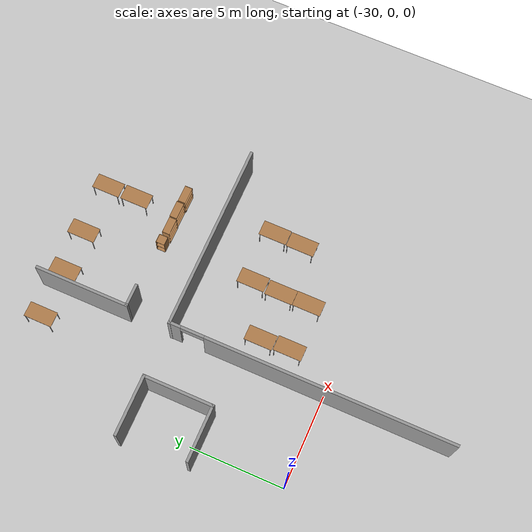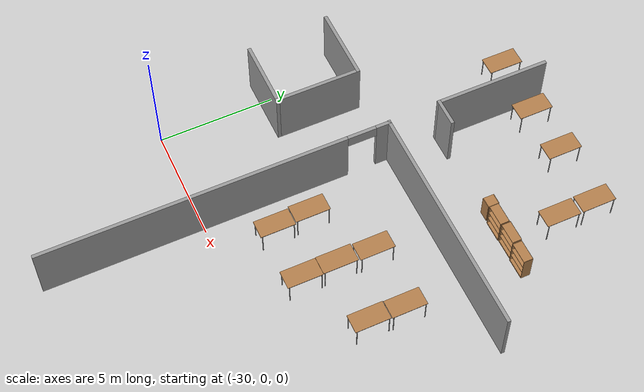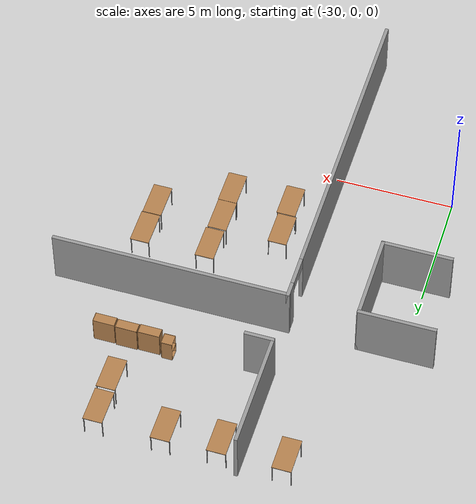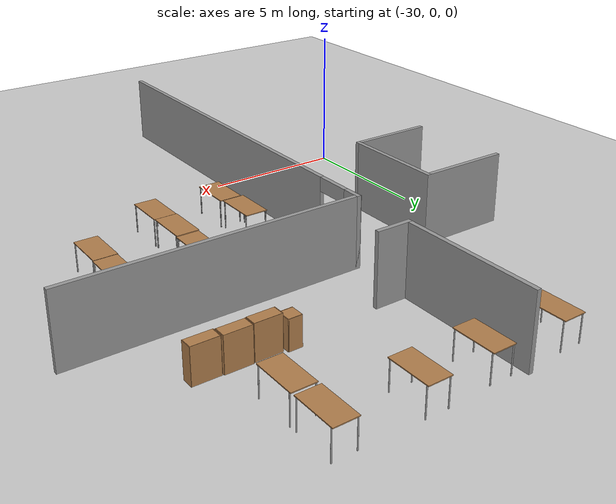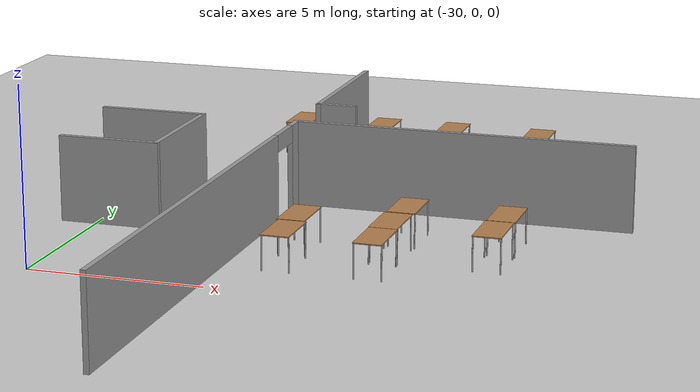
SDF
<sdf version="1.4">
 <world name="default">
  <model name="ground_plane">
   <static>1</static>
   <link name="link">
    <collision name="collision">
     <geometry><plane><normal>0 0 1</normal><size>100 100</size></plane></geometry>
    </collision>
    <visual name="visual">
     <cast_shadows>0</cast_shadows>
     <geometry><plane><normal>0 0 1</normal><size>100 100</size></plane></geometry>
     <material>
      <script><uri>file://media/materials/scripts/gazebo.material</uri><name>Gazebo/Grey</name></script>
     </material>
    </visual>
    <velocity_decay><linear>0</linear><angular>0</angular></velocity_decay>
   </link>
  </model>
  <model name="Shannon">
   <pose>-0.0406 0.68299 0 0 -0 0</pose>
   <link name="Wall_108">
    <collision name="Wall_108_Collision">
     <geometry><box><size>3.75 0.15 2.5</size></box></geometry>
     <pose>0 0 1.25 0 -0 0</pose>
    </collision>
    <visual name="Wall_108_Visual">
     <pose>0 0 1.25 0 -0 0</pose>
     <geometry><box><size>3.75 0.15 2.5</size></box></geometry>
     <material>
      <script><uri>file://media/materials/scripts/gazebo.material</uri><name>Gazebo/Grey</name></script>
      <ambient>1 1 1 1</ambient>
     </material>
    </visual>
    <pose>-28.0998 5.68065 0 0 -0 -1.5708</pose>
    <velocity_decay><linear>0</linear><angular>0</angular></velocity_decay>
   </link>
   <link name="Wall_109">
    <collision name="Wall_109_Collision">
     <geometry><box><size>3 0.15 2.5</size></box></geometry>
     <pose>0 0 1.25 0 -0 0</pose>
    </collision>
    <visual name="Wall_109_Visual">
     <pose>0 0 1.25 0 -0 0</pose>
     <geometry><box><size>3 0.15 2.5</size></box></geometry>
     <material>
      <script><uri>file://media/materials/scripts/gazebo.material</uri><name>Gazebo/Grey</name></script>
      <ambient>1 1 1 1</ambient>
     </material>
    </visual>
    <pose>-29.5248 3.88065 0 0 -0 3.14159</pose>
    <velocity_decay><linear>0</linear><angular>0</angular></velocity_decay>
   </link>
   <link name="Wall_16">
    <collision name="Wall_16_Collision">
     <geometry><box><size>10 0.15 2.5</size></box></geometry>
     <pose>0 0 1.25 0 -0 0</pose>
    </collision>
    <visual name="Wall_16_Visual">
     <pose>0 0 1.25 0 -0 0</pose>
     <geometry><box><size>10 0.15 2.5</size></box></geometry>
     <material>
      <script><uri>file://media/materials/scripts/gazebo.material</uri><name>Gazebo/Grey</name></script>
      <ambient>1 1 1 1</ambient>
     </material>
    </visual>
    <pose>-20.2786 7.49586 0 0 -0 0</pose>
    <velocity_decay><linear>0</linear><angular>0</angular></velocity_decay>
   </link>
   <link name="Wall_20">
    <pose>-25.1903 0.07086 0 0 -0 1.5708</pose>
    <visual name="Wall_20_Visual_0">
     <pose>-0.95824 0 1.25 0 -0 0</pose>
     <geometry><box><size>13.0835 0.15 2.5</size></box></geometry>
     <material>
      <script><uri>file://media/materials/scripts/gazebo.material</uri><name>Gazebo/Grey</name></script>
      <ambient>1 1 1 1</ambient>
     </material>
    </visual>
    <collision name="Wall_20_Collision_0">
     <geometry><box><size>13.0835 0.15 2.5</size></box></geometry>
     <pose>-0.95824 0 1.25 0 -0 0</pose>
    </collision>
    <visual name="Wall_20_Visual_1">
     <pose>7.16524 0 1.25 0 -0 0</pose>
     <geometry><box><size>0.669521 0.15 2.5</size></box></geometry>
     <material>
      <script><uri>file://media/materials/scripts/gazebo.material</uri><name>Gazebo/Grey</name></script>
      <ambient>1 1 1 1</ambient>
     </material>
    </visual>
    <collision name="Wall_20_Collision_1">
     <geometry><box><size>0.669521 0.15 2.5</size></box></geometry>
     <pose>7.16524 0 1.25 0 -0 0</pose>
    </collision>
    <visual name="Wall_20_Visual_2">
     <pose>6.207 0 2.25 0 -0 0</pose>
     <geometry><box><size>1.24696 0.15 0.5</size></box></geometry>
     <material>
      <script><uri>file://media/materials/scripts/gazebo.material</uri><name>Gazebo/Grey</name></script>
      <ambient>1 1 1 1</ambient>
     </material>
    </visual>
    <collision name="Wall_20_Collision_2">
     <geometry><box><size>1.24696 0.15 0.5</size></box></geometry>
     <pose>6.207 0 2.25 0 -0 0</pose>
    </collision>
    <velocity_decay><linear>0</linear><angular>0</angular></velocity_decay>
   </link>
   <link name="Wall_73">
    <collision name="Wall_73_Collision">
     <geometry><box><size>3.25 0.15 2.5</size></box></geometry>
     <pose>0 0 1.25 0 -0 0</pose>
    </collision>
    <visual name="Wall_73_Visual">
     <pose>0 0 1.25 0 -0 0</pose>
     <geometry><box><size>3.25 0.15 2.5</size></box></geometry>
     <material>
      <script><uri>file://media/materials/scripts/gazebo.material</uri><name>Gazebo/Grey</name></script>
      <ambient>1 1 1 1</ambient>
     </material>
    </visual>
    <pose>-29.6498 7.48065 0 0 -0 0</pose>
    <velocity_decay><linear>0</linear><angular>0</angular></velocity_decay>
   </link>
   <link name="Wall_75">
    <collision name="Wall_75_Collision">
     <geometry><box><size>5 0.15 2.5</size></box></geometry>
     <pose>0 0 1.25 0 -0 0</pose>
    </collision>
    <visual name="Wall_75_Visual">
     <pose>0 0 1.25 0 -0 0</pose>
     <geometry><box><size>5 0.15 2.5</size></box></geometry>
     <material>
      <script><uri>file://media/materials/scripts/gazebo.material</uri><name>Gazebo/Grey</name></script>
      <ambient>1 1 1 1</ambient>
     </material>
    </visual>
    <pose>-25.2552 12.203 0 0 -0 -1.5708</pose>
    <velocity_decay><linear>0</linear><angular>0</angular></velocity_decay>
   </link>
   <link name="Wall_76">
    <collision name="Wall_76_Collision">
     <geometry><box><size>1.25 0.15 2.5</size></box></geometry>
     <pose>0 0 1.25 0 -0 0</pose>
    </collision>
    <visual name="Wall_76_Visual">
     <pose>0 0 1.25 0 -0 0</pose>
     <geometry><box><size>1.25 0.15 2.5</size></box></geometry>
     <material>
      <script><uri>file://media/materials/scripts/gazebo.material</uri><name>Gazebo/Grey</name></script>
      <ambient>1 1 1 1</ambient>
     </material>
    </visual>
    <pose>-24.7052 9.77801 0 0 -0 0</pose>
    <velocity_decay><linear>0</linear><angular>0</angular></velocity_decay>
   </link>
   <static>1</static>
  </model>
  <model name="cabinet">
   <static>1</static>
   <link name="cabinet_bottom_plate">
    <inertial>
     <pose>0 0 -1 0 -0 0</pose>
     <inertia><ixx>2.05</ixx><ixy>0</ixy><ixz>0</ixz><iyy>2.05</iyy><iyz>0</iyz><izz>2.05</izz></inertia>
     <mass>25</mass>
    </inertial>
    <collision name="cabinet_bottom_plate_geom">
     <pose>0 0 0.01 0 -0 0</pose>
     <geometry><box><size>0.45 0.45 0.02</size></box></geometry>
    </collision>
    <visual name="cabinet_bottom_plate_geom_visual">
     <pose>0 0 0.01 0 -0 0</pose>
     <geometry><box><size>0.45 0.45 0.02</size></box></geometry>
     <material>
      <script><uri>file://media/materials/scripts/gazebo.material</uri><name>Gazebo/Wood</name></script>
     </material>
    </visual>
    <collision name="cabinet_bottom_plate_geom_cabinet_back_plate">
     <pose>0.235 0 0.51 0 -0 0</pose>
     <geometry><box><size>0.02 0.45 1.02</size></box></geometry>
    </collision>
    <visual name="cabinet_bottom_plate_geom_cabinet_back_plate_visual">
     <pose>0.235 0 0.51 0 -0 0</pose>
     <geometry><box><size>0.02 0.45 1.02</size></box></geometry>
     <material>
      <script><uri>file://media/materials/scripts/gazebo.material</uri><name>Gazebo/Wood</name></script>
     </material>
    </visual>
    <collision name="cabinet_bottom_plate_geom_cabinet_left_plate">
     <pose>0 0.235 0.51 0 -0 0</pose>
     <geometry><box><size>0.45 0.02 1.02</size></box></geometry>
    </collision>
    <visual name="cabinet_bottom_plate_geom_cabinet_left_plate_visual">
     <pose>0 0.235 0.51 0 -0 0</pose>
     <geometry><box><size>0.45 0.02 1.02</size></box></geometry>
     <material>
      <script><uri>file://media/materials/scripts/gazebo.material</uri><name>Gazebo/Wood</name></script>
     </material>
    </visual>
    <collision name="cabinet_bottom_plate_geom_cabinet_middle_plate">
     <pose>0 0 0.51 0 -0 0</pose>
     <geometry><box><size>0.45 0.45 0.02</size></box></geometry>
    </collision>
    <visual name="cabinet_bottom_plate_geom_cabinet_middle_plate_visual">
     <pose>0 0 0.51 0 -0 0</pose>
     <geometry><box><size>0.45 0.45 0.02</size></box></geometry>
     <material>
      <script><uri>file://media/materials/scripts/gazebo.material</uri><name>Gazebo/Wood</name></script>
     </material>
    </visual>
    <collision name="cabinet_bottom_plate_geom_cabinet_right_plate">
     <pose>0 -0.235 0.51 0 -0 0</pose>
     <geometry><box><size>0.45 0.02 1.02</size></box></geometry>
    </collision>
    <visual name="cabinet_bottom_plate_geom_cabinet_right_plate_visual">
     <pose>0 -0.235 0.51 0 -0 0</pose>
     <geometry><box><size>0.45 0.02 1.02</size></box></geometry>
     <material>
      <script><uri>file://media/materials/scripts/gazebo.material</uri><name>Gazebo/Wood</name></script>
     </material>
    </visual>
    <collision name="cabinet_bottom_plate_geom_cabinet_top_plate">
     <pose>0 0 1.01 0 -0 0</pose>
     <geometry><box><size>0.45 0.45 0.02</size></box></geometry>
    </collision>
    <visual name="cabinet_bottom_plate_geom_cabinet_top_plate_visual">
     <pose>0 0 1.01 0 -0 0</pose>
     <geometry><box><size>0.45 0.45 0.02</size></box></geometry>
     <material>
      <script><uri>file://media/materials/scripts/gazebo.material</uri><name>Gazebo/Wood</name></script>
     </material>
    </visual>
    <velocity_decay><linear>0</linear><angular>0</angular></velocity_decay>
   </link>
   <pose>-21.0183 10.6635 0 0 -0 0</pose>
  </model>
  <model name="table_clone_clone_9">
   <static>1</static>
   <link name="link">
    <collision name="surface">
     <pose>0 0 1 0 -0 0</pose>
     <geometry><box><size>1.5 0.8 0.03</size></box></geometry>
    </collision>
    <visual name="visual1">
     <pose>0 0 1 0 -0 0</pose>
     <geometry><box><size>1.5 0.8 0.03</size></box></geometry>
     <material>
      <script><uri>file://media/materials/scripts/gazebo.material</uri><name>Gazebo/Wood</name></script>
     </material>
    </visual>
    <collision name="front_left_leg">
     <pose>0.68 0.38 0.5 0 -0 0</pose>
     <geometry><cylinder><radius>0.02</radius><length>1</length></cylinder></geometry>
    </collision>
    <visual name="front_left_leg">
     <pose>0.68 0.38 0.5 0 -0 0</pose>
     <geometry><cylinder><radius>0.02</radius><length>1</length></cylinder></geometry>
     <material>
      <script><uri>file://media/materials/scripts/gazebo.material</uri><name>Gazebo/Grey</name></script>
     </material>
    </visual>
    <collision name="front_right_leg">
     <pose>0.68 -0.38 0.5 0 -0 0</pose>
     <geometry><cylinder><radius>0.02</radius><length>1</length></cylinder></geometry>
    </collision>
    <visual name="front_right_leg">
     <pose>0.68 -0.38 0.5 0 -0 0</pose>
     <geometry><cylinder><radius>0.02</radius><length>1</length></cylinder></geometry>
     <material>
      <script><uri>file://media/materials/scripts/gazebo.material</uri><name>Gazebo/Grey</name></script>
     </material>
    </visual>
    <collision name="back_right_leg">
     <pose>-0.68 -0.38 0.5 0 -0 0</pose>
     <geometry><cylinder><radius>0.02</radius><length>1</length></cylinder></geometry>
    </collision>
    <visual name="back_right_leg">
     <pose>-0.68 -0.38 0.5 0 -0 0</pose>
     <geometry><cylinder><radius>0.02</radius><length>1</length></cylinder></geometry>
     <material>
      <script><uri>file://media/materials/scripts/gazebo.material</uri><name>Gazebo/Grey</name></script>
     </material>
    </visual>
    <collision name="back_left_leg">
     <pose>-0.68 0.38 0.5 0 -0 0</pose>
     <geometry><cylinder><radius>0.02</radius><length>1</length></cylinder></geometry>
    </collision>
    <visual name="back_left_leg">
     <pose>-0.68 0.38 0.5 0 -0 0</pose>
     <geometry><cylinder><radius>0.02</radius><length>1</length></cylinder></geometry>
     <material>
      <script><uri>file://media/materials/scripts/gazebo.material</uri><name>Gazebo/Grey</name></script>
     </material>
    </visual>
    <velocity_decay><linear>0</linear><angular>0</angular></velocity_decay>
   </link>
   <pose>-19.4067 14.4697 0 0 -0 1.57</pose>
  </model>
  <model name="table_clone_clone_10">
   <static>1</static>
   <link name="link">
    <collision name="surface">
     <pose>0 0 1 0 -0 0</pose>
     <geometry><box><size>1.5 0.8 0.03</size></box></geometry>
    </collision>
    <visual name="visual1">
     <pose>0 0 1 0 -0 0</pose>
     <geometry><box><size>1.5 0.8 0.03</size></box></geometry>
     <material>
      <script><uri>file://media/materials/scripts/gazebo.material</uri><name>Gazebo/Wood</name></script>
     </material>
    </visual>
    <collision name="front_left_leg">
     <pose>0.68 0.38 0.5 0 -0 0</pose>
     <geometry><cylinder><radius>0.02</radius><length>1</length></cylinder></geometry>
    </collision>
    <visual name="front_left_leg">
     <pose>0.68 0.38 0.5 0 -0 0</pose>
     <geometry><cylinder><radius>0.02</radius><length>1</length></cylinder></geometry>
     <material>
      <script><uri>file://media/materials/scripts/gazebo.material</uri><name>Gazebo/Grey</name></script>
     </material>
    </visual>
    <collision name="front_right_leg">
     <pose>0.68 -0.38 0.5 0 -0 0</pose>
     <geometry><cylinder><radius>0.02</radius><length>1</length></cylinder></geometry>
    </collision>
    <visual name="front_right_leg">
     <pose>0.68 -0.38 0.5 0 -0 0</pose>
     <geometry><cylinder><radius>0.02</radius><length>1</length></cylinder></geometry>
     <material>
      <script><uri>file://media/materials/scripts/gazebo.material</uri><name>Gazebo/Grey</name></script>
     </material>
    </visual>
    <collision name="back_right_leg">
     <pose>-0.68 -0.38 0.5 0 -0 0</pose>
     <geometry><cylinder><radius>0.02</radius><length>1</length></cylinder></geometry>
    </collision>
    <visual name="back_right_leg">
     <pose>-0.68 -0.38 0.5 0 -0 0</pose>
     <geometry><cylinder><radius>0.02</radius><length>1</length></cylinder></geometry>
     <material>
      <script><uri>file://media/materials/scripts/gazebo.material</uri><name>Gazebo/Grey</name></script>
     </material>
    </visual>
    <collision name="back_left_leg">
     <pose>-0.68 0.38 0.5 0 -0 0</pose>
     <geometry><cylinder><radius>0.02</radius><length>1</length></cylinder></geometry>
    </collision>
    <visual name="back_left_leg">
     <pose>-0.68 0.38 0.5 0 -0 0</pose>
     <geometry><cylinder><radius>0.02</radius><length>1</length></cylinder></geometry>
     <material>
      <script><uri>file://media/materials/scripts/gazebo.material</uri><name>Gazebo/Grey</name></script>
     </material>
    </visual>
    <velocity_decay><linear>0</linear><angular>0</angular></velocity_decay>
   </link>
   <pose>-19.3916 12.8642 0 0 -0 1.57</pose>
  </model>
  <model name="table_clone_clone_11">
   <static>1</static>
   <link name="link">
    <collision name="surface">
     <pose>0 0 1 0 -0 0</pose>
     <geometry><box><size>1.5 0.8 0.03</size></box></geometry>
    </collision>
    <visual name="visual1">
     <pose>0 0 1 0 -0 0</pose>
     <geometry><box><size>1.5 0.8 0.03</size></box></geometry>
     <material>
      <script><uri>file://media/materials/scripts/gazebo.material</uri><name>Gazebo/Wood</name></script>
     </material>
    </visual>
    <collision name="front_left_leg">
     <pose>0.68 0.38 0.5 0 -0 0</pose>
     <geometry><cylinder><radius>0.02</radius><length>1</length></cylinder></geometry>
    </collision>
    <visual name="front_left_leg">
     <pose>0.68 0.38 0.5 0 -0 0</pose>
     <geometry><cylinder><radius>0.02</radius><length>1</length></cylinder></geometry>
     <material>
      <script><uri>file://media/materials/scripts/gazebo.material</uri><name>Gazebo/Grey</name></script>
     </material>
    </visual>
    <collision name="front_right_leg">
     <pose>0.68 -0.38 0.5 0 -0 0</pose>
     <geometry><cylinder><radius>0.02</radius><length>1</length></cylinder></geometry>
    </collision>
    <visual name="front_right_leg">
     <pose>0.68 -0.38 0.5 0 -0 0</pose>
     <geometry><cylinder><radius>0.02</radius><length>1</length></cylinder></geometry>
     <material>
      <script><uri>file://media/materials/scripts/gazebo.material</uri><name>Gazebo/Grey</name></script>
     </material>
    </visual>
    <collision name="back_right_leg">
     <pose>-0.68 -0.38 0.5 0 -0 0</pose>
     <geometry><cylinder><radius>0.02</radius><length>1</length></cylinder></geometry>
    </collision>
    <visual name="back_right_leg">
     <pose>-0.68 -0.38 0.5 0 -0 0</pose>
     <geometry><cylinder><radius>0.02</radius><length>1</length></cylinder></geometry>
     <material>
      <script><uri>file://media/materials/scripts/gazebo.material</uri><name>Gazebo/Grey</name></script>
     </material>
    </visual>
    <collision name="back_left_leg">
     <pose>-0.68 0.38 0.5 0 -0 0</pose>
     <geometry><cylinder><radius>0.02</radius><length>1</length></cylinder></geometry>
    </collision>
    <visual name="back_left_leg">
     <pose>-0.68 0.38 0.5 0 -0 0</pose>
     <geometry><cylinder><radius>0.02</radius><length>1</length></cylinder></geometry>
     <material>
      <script><uri>file://media/materials/scripts/gazebo.material</uri><name>Gazebo/Grey</name></script>
     </material>
    </visual>
    <velocity_decay><linear>0</linear><angular>0</angular></velocity_decay>
   </link>
   <pose>-22.182 14.5341 0 0 -0 1.57</pose>
  </model>
  <model name="table_clone_clone_13">
   <static>1</static>
   <link name="link">
    <collision name="surface">
     <pose>0 0 1 0 -0 0</pose>
     <geometry><box><size>1.5 0.8 0.03</size></box></geometry>
    </collision>
    <visual name="visual1">
     <pose>0 0 1 0 -0 0</pose>
     <geometry><box><size>1.5 0.8 0.03</size></box></geometry>
     <material>
      <script><uri>file://media/materials/scripts/gazebo.material</uri><name>Gazebo/Wood</name></script>
     </material>
    </visual>
    <collision name="front_left_leg">
     <pose>0.68 0.38 0.5 0 -0 0</pose>
     <geometry><cylinder><radius>0.02</radius><length>1</length></cylinder></geometry>
    </collision>
    <visual name="front_left_leg">
     <pose>0.68 0.38 0.5 0 -0 0</pose>
     <geometry><cylinder><radius>0.02</radius><length>1</length></cylinder></geometry>
     <material>
      <script><uri>file://media/materials/scripts/gazebo.material</uri><name>Gazebo/Grey</name></script>
     </material>
    </visual>
    <collision name="front_right_leg">
     <pose>0.68 -0.38 0.5 0 -0 0</pose>
     <geometry><cylinder><radius>0.02</radius><length>1</length></cylinder></geometry>
    </collision>
    <visual name="front_right_leg">
     <pose>0.68 -0.38 0.5 0 -0 0</pose>
     <geometry><cylinder><radius>0.02</radius><length>1</length></cylinder></geometry>
     <material>
      <script><uri>file://media/materials/scripts/gazebo.material</uri><name>Gazebo/Grey</name></script>
     </material>
    </visual>
    <collision name="back_right_leg">
     <pose>-0.68 -0.38 0.5 0 -0 0</pose>
     <geometry><cylinder><radius>0.02</radius><length>1</length></cylinder></geometry>
    </collision>
    <visual name="back_right_leg">
     <pose>-0.68 -0.38 0.5 0 -0 0</pose>
     <geometry><cylinder><radius>0.02</radius><length>1</length></cylinder></geometry>
     <material>
      <script><uri>file://media/materials/scripts/gazebo.material</uri><name>Gazebo/Grey</name></script>
     </material>
    </visual>
    <collision name="back_left_leg">
     <pose>-0.68 0.38 0.5 0 -0 0</pose>
     <geometry><cylinder><radius>0.02</radius><length>1</length></cylinder></geometry>
    </collision>
    <visual name="back_left_leg">
     <pose>-0.68 0.38 0.5 0 -0 0</pose>
     <geometry><cylinder><radius>0.02</radius><length>1</length></cylinder></geometry>
     <material>
      <script><uri>file://media/materials/scripts/gazebo.material</uri><name>Gazebo/Grey</name></script>
     </material>
    </visual>
    <velocity_decay><linear>0</linear><angular>0</angular></velocity_decay>
   </link>
   <pose>-24.4446 14.4611 0 0 -0 1.57</pose>
  </model>
  <model name="table_clone_clone_15">
   <static>1</static>
   <link name="link">
    <collision name="surface">
     <pose>0 0 1 0 -0 0</pose>
     <geometry><box><size>1.5 0.8 0.03</size></box></geometry>
    </collision>
    <visual name="visual1">
     <pose>0 0 1 0 -0 0</pose>
     <geometry><box><size>1.5 0.8 0.03</size></box></geometry>
     <material>
      <script><uri>file://media/materials/scripts/gazebo.material</uri><name>Gazebo/Wood</name></script>
     </material>
    </visual>
    <collision name="front_left_leg">
     <pose>0.68 0.38 0.5 0 -0 0</pose>
     <geometry><cylinder><radius>0.02</radius><length>1</length></cylinder></geometry>
    </collision>
    <visual name="front_left_leg">
     <pose>0.68 0.38 0.5 0 -0 0</pose>
     <geometry><cylinder><radius>0.02</radius><length>1</length></cylinder></geometry>
     <material>
      <script><uri>file://media/materials/scripts/gazebo.material</uri><name>Gazebo/Grey</name></script>
     </material>
    </visual>
    <collision name="front_right_leg">
     <pose>0.68 -0.38 0.5 0 -0 0</pose>
     <geometry><cylinder><radius>0.02</radius><length>1</length></cylinder></geometry>
    </collision>
    <visual name="front_right_leg">
     <pose>0.68 -0.38 0.5 0 -0 0</pose>
     <geometry><cylinder><radius>0.02</radius><length>1</length></cylinder></geometry>
     <material>
      <script><uri>file://media/materials/scripts/gazebo.material</uri><name>Gazebo/Grey</name></script>
     </material>
    </visual>
    <collision name="back_right_leg">
     <pose>-0.68 -0.38 0.5 0 -0 0</pose>
     <geometry><cylinder><radius>0.02</radius><length>1</length></cylinder></geometry>
    </collision>
    <visual name="back_right_leg">
     <pose>-0.68 -0.38 0.5 0 -0 0</pose>
     <geometry><cylinder><radius>0.02</radius><length>1</length></cylinder></geometry>
     <material>
      <script><uri>file://media/materials/scripts/gazebo.material</uri><name>Gazebo/Grey</name></script>
     </material>
    </visual>
    <collision name="back_left_leg">
     <pose>-0.68 0.38 0.5 0 -0 0</pose>
     <geometry><cylinder><radius>0.02</radius><length>1</length></cylinder></geometry>
    </collision>
    <visual name="back_left_leg">
     <pose>-0.68 0.38 0.5 0 -0 0</pose>
     <geometry><cylinder><radius>0.02</radius><length>1</length></cylinder></geometry>
     <material>
      <script><uri>file://media/materials/scripts/gazebo.material</uri><name>Gazebo/Grey</name></script>
     </material>
    </visual>
    <velocity_decay><linear>0</linear><angular>0</angular></velocity_decay>
   </link>
   <pose>-27.0814 14.4848 0 0 -0 1.57</pose>
  </model>
  <model name="table_clone_clone_20">
   <static>1</static>
   <link name="link">
    <collision name="surface">
     <pose>0 0 1 0 -0 0</pose>
     <geometry><box><size>1.5 0.8 0.03</size></box></geometry>
    </collision>
    <visual name="visual1">
     <pose>0 0 1 0 -0 0</pose>
     <geometry><box><size>1.5 0.8 0.03</size></box></geometry>
     <material>
      <script><uri>file://media/materials/scripts/gazebo.material</uri><name>Gazebo/Wood</name></script>
     </material>
    </visual>
    <collision name="front_left_leg">
     <pose>0.68 0.38 0.5 0 -0 0</pose>
     <geometry><cylinder><radius>0.02</radius><length>1</length></cylinder></geometry>
    </collision>
    <visual name="front_left_leg">
     <pose>0.68 0.38 0.5 0 -0 0</pose>
     <geometry><cylinder><radius>0.02</radius><length>1</length></cylinder></geometry>
     <material>
      <script><uri>file://media/materials/scripts/gazebo.material</uri><name>Gazebo/Grey</name></script>
     </material>
    </visual>
    <collision name="front_right_leg">
     <pose>0.68 -0.38 0.5 0 -0 0</pose>
     <geometry><cylinder><radius>0.02</radius><length>1</length></cylinder></geometry>
    </collision>
    <visual name="front_right_leg">
     <pose>0.68 -0.38 0.5 0 -0 0</pose>
     <geometry><cylinder><radius>0.02</radius><length>1</length></cylinder></geometry>
     <material>
      <script><uri>file://media/materials/scripts/gazebo.material</uri><name>Gazebo/Grey</name></script>
     </material>
    </visual>
    <collision name="back_right_leg">
     <pose>-0.68 -0.38 0.5 0 -0 0</pose>
     <geometry><cylinder><radius>0.02</radius><length>1</length></cylinder></geometry>
    </collision>
    <visual name="back_right_leg">
     <pose>-0.68 -0.38 0.5 0 -0 0</pose>
     <geometry><cylinder><radius>0.02</radius><length>1</length></cylinder></geometry>
     <material>
      <script><uri>file://media/materials/scripts/gazebo.material</uri><name>Gazebo/Grey</name></script>
     </material>
    </visual>
    <collision name="back_left_leg">
     <pose>-0.68 0.38 0.5 0 -0 0</pose>
     <geometry><cylinder><radius>0.02</radius><length>1</length></cylinder></geometry>
    </collision>
    <visual name="back_left_leg">
     <pose>-0.68 0.38 0.5 0 -0 0</pose>
     <geometry><cylinder><radius>0.02</radius><length>1</length></cylinder></geometry>
     <material>
      <script><uri>file://media/materials/scripts/gazebo.material</uri><name>Gazebo/Grey</name></script>
     </material>
    </visual>
    <velocity_decay><linear>0</linear><angular>0</angular></velocity_decay>
   </link>
   <pose>-18.348 4.00787 0 0 -0 1.57</pose>
  </model>
  <model name="table_clone_clone_21">
   <static>1</static>
   <link name="link">
    <collision name="surface">
     <pose>0 0 1 0 -0 0</pose>
     <geometry><box><size>1.5 0.8 0.03</size></box></geometry>
    </collision>
    <visual name="visual1">
     <pose>0 0 1 0 -0 0</pose>
     <geometry><box><size>1.5 0.8 0.03</size></box></geometry>
     <material>
      <script><uri>file://media/materials/scripts/gazebo.material</uri><name>Gazebo/Wood</name></script>
     </material>
    </visual>
    <collision name="front_left_leg">
     <pose>0.68 0.38 0.5 0 -0 0</pose>
     <geometry><cylinder><radius>0.02</radius><length>1</length></cylinder></geometry>
    </collision>
    <visual name="front_left_leg">
     <pose>0.68 0.38 0.5 0 -0 0</pose>
     <geometry><cylinder><radius>0.02</radius><length>1</length></cylinder></geometry>
     <material>
      <script><uri>file://media/materials/scripts/gazebo.material</uri><name>Gazebo/Grey</name></script>
     </material>
    </visual>
    <collision name="front_right_leg">
     <pose>0.68 -0.38 0.5 0 -0 0</pose>
     <geometry><cylinder><radius>0.02</radius><length>1</length></cylinder></geometry>
    </collision>
    <visual name="front_right_leg">
     <pose>0.68 -0.38 0.5 0 -0 0</pose>
     <geometry><cylinder><radius>0.02</radius><length>1</length></cylinder></geometry>
     <material>
      <script><uri>file://media/materials/scripts/gazebo.material</uri><name>Gazebo/Grey</name></script>
     </material>
    </visual>
    <collision name="back_right_leg">
     <pose>-0.68 -0.38 0.5 0 -0 0</pose>
     <geometry><cylinder><radius>0.02</radius><length>1</length></cylinder></geometry>
    </collision>
    <visual name="back_right_leg">
     <pose>-0.68 -0.38 0.5 0 -0 0</pose>
     <geometry><cylinder><radius>0.02</radius><length>1</length></cylinder></geometry>
     <material>
      <script><uri>file://media/materials/scripts/gazebo.material</uri><name>Gazebo/Grey</name></script>
     </material>
    </visual>
    <collision name="back_left_leg">
     <pose>-0.68 0.38 0.5 0 -0 0</pose>
     <geometry><cylinder><radius>0.02</radius><length>1</length></cylinder></geometry>
    </collision>
    <visual name="back_left_leg">
     <pose>-0.68 0.38 0.5 0 -0 0</pose>
     <geometry><cylinder><radius>0.02</radius><length>1</length></cylinder></geometry>
     <material>
      <script><uri>file://media/materials/scripts/gazebo.material</uri><name>Gazebo/Grey</name></script>
     </material>
    </visual>
    <velocity_decay><linear>0</linear><angular>0</angular></velocity_decay>
   </link>
   <pose>-18.3195 5.53327 0 0 -0 1.57</pose>
  </model>
  <model name="table_clone_clone_21_clone_3_clone">
   <static>1</static>
   <link name="link">
    <collision name="surface">
     <pose>0 0 1 0 -0 0</pose>
     <geometry><box><size>1.5 0.8 0.03</size></box></geometry>
    </collision>
    <visual name="visual1">
     <pose>0 0 1 0 -0 0</pose>
     <geometry><box><size>1.5 0.8 0.03</size></box></geometry>
     <material>
      <script><uri>file://media/materials/scripts/gazebo.material</uri><name>Gazebo/Wood</name></script>
     </material>
    </visual>
    <collision name="front_left_leg">
     <pose>0.68 0.38 0.5 0 -0 0</pose>
     <geometry><cylinder><radius>0.02</radius><length>1</length></cylinder></geometry>
    </collision>
    <visual name="front_left_leg">
     <pose>0.68 0.38 0.5 0 -0 0</pose>
     <geometry><cylinder><radius>0.02</radius><length>1</length></cylinder></geometry>
     <material>
      <script><uri>file://media/materials/scripts/gazebo.material</uri><name>Gazebo/Grey</name></script>
     </material>
    </visual>
    <collision name="front_right_leg">
     <pose>0.68 -0.38 0.5 0 -0 0</pose>
     <geometry><cylinder><radius>0.02</radius><length>1</length></cylinder></geometry>
    </collision>
    <visual name="front_right_leg">
     <pose>0.68 -0.38 0.5 0 -0 0</pose>
     <geometry><cylinder><radius>0.02</radius><length>1</length></cylinder></geometry>
     <material>
      <script><uri>file://media/materials/scripts/gazebo.material</uri><name>Gazebo/Grey</name></script>
     </material>
    </visual>
    <collision name="back_right_leg">
     <pose>-0.68 -0.38 0.5 0 -0 0</pose>
     <geometry><cylinder><radius>0.02</radius><length>1</length></cylinder></geometry>
    </collision>
    <visual name="back_right_leg">
     <pose>-0.68 -0.38 0.5 0 -0 0</pose>
     <geometry><cylinder><radius>0.02</radius><length>1</length></cylinder></geometry>
     <material>
      <script><uri>file://media/materials/scripts/gazebo.material</uri><name>Gazebo/Grey</name></script>
     </material>
    </visual>
    <collision name="back_left_leg">
     <pose>-0.68 0.38 0.5 0 -0 0</pose>
     <geometry><cylinder><radius>0.02</radius><length>1</length></cylinder></geometry>
    </collision>
    <visual name="back_left_leg">
     <pose>-0.68 0.38 0.5 0 -0 0</pose>
     <geometry><cylinder><radius>0.02</radius><length>1</length></cylinder></geometry>
     <material>
      <script><uri>file://media/materials/scripts/gazebo.material</uri><name>Gazebo/Grey</name></script>
     </material>
    </visual>
    <velocity_decay><linear>0</linear><angular>0</angular></velocity_decay>
   </link>
   <pose>-21.1426 2.4794 0 0 -0 1.57</pose>
  </model>
  <model name="table_clone_clone_21_clone_3_clone_0">
   <static>1</static>
   <link name="link">
    <collision name="surface">
     <pose>0 0 1 0 -0 0</pose>
     <geometry><box><size>1.5 0.8 0.03</size></box></geometry>
    </collision>
    <visual name="visual1">
     <pose>0 0 1 0 -0 0</pose>
     <geometry><box><size>1.5 0.8 0.03</size></box></geometry>
     <material>
      <script><uri>file://media/materials/scripts/gazebo.material</uri><name>Gazebo/Wood</name></script>
     </material>
    </visual>
    <collision name="front_left_leg">
     <pose>0.68 0.38 0.5 0 -0 0</pose>
     <geometry><cylinder><radius>0.02</radius><length>1</length></cylinder></geometry>
    </collision>
    <visual name="front_left_leg">
     <pose>0.68 0.38 0.5 0 -0 0</pose>
     <geometry><cylinder><radius>0.02</radius><length>1</length></cylinder></geometry>
     <material>
      <script><uri>file://media/materials/scripts/gazebo.material</uri><name>Gazebo/Grey</name></script>
     </material>
    </visual>
    <collision name="front_right_leg">
     <pose>0.68 -0.38 0.5 0 -0 0</pose>
     <geometry><cylinder><radius>0.02</radius><length>1</length></cylinder></geometry>
    </collision>
    <visual name="front_right_leg">
     <pose>0.68 -0.38 0.5 0 -0 0</pose>
     <geometry><cylinder><radius>0.02</radius><length>1</length></cylinder></geometry>
     <material>
      <script><uri>file://media/materials/scripts/gazebo.material</uri><name>Gazebo/Grey</name></script>
     </material>
    </visual>
    <collision name="back_right_leg">
     <pose>-0.68 -0.38 0.5 0 -0 0</pose>
     <geometry><cylinder><radius>0.02</radius><length>1</length></cylinder></geometry>
    </collision>
    <visual name="back_right_leg">
     <pose>-0.68 -0.38 0.5 0 -0 0</pose>
     <geometry><cylinder><radius>0.02</radius><length>1</length></cylinder></geometry>
     <material>
      <script><uri>file://media/materials/scripts/gazebo.material</uri><name>Gazebo/Grey</name></script>
     </material>
    </visual>
    <collision name="back_left_leg">
     <pose>-0.68 0.38 0.5 0 -0 0</pose>
     <geometry><cylinder><radius>0.02</radius><length>1</length></cylinder></geometry>
    </collision>
    <visual name="back_left_leg">
     <pose>-0.68 0.38 0.5 0 -0 0</pose>
     <geometry><cylinder><radius>0.02</radius><length>1</length></cylinder></geometry>
     <material>
      <script><uri>file://media/materials/scripts/gazebo.material</uri><name>Gazebo/Grey</name></script>
     </material>
    </visual>
    <velocity_decay><linear>0</linear><angular>0</angular></velocity_decay>
   </link>
   <pose>-23.6654 2.44098 0 0 -0 1.57</pose>
  </model>
  <model name="table_clone_clone_21_clone_3_clone_1">
   <static>1</static>
   <link name="link">
    <collision name="surface">
     <pose>0 0 1 0 -0 0</pose>
     <geometry><box><size>1.5 0.8 0.03</size></box></geometry>
    </collision>
    <visual name="visual1">
     <pose>0 0 1 0 -0 0</pose>
     <geometry><box><size>1.5 0.8 0.03</size></box></geometry>
     <material>
      <script><uri>file://media/materials/scripts/gazebo.material</uri><name>Gazebo/Wood</name></script>
     </material>
    </visual>
    <collision name="front_left_leg">
     <pose>0.68 0.38 0.5 0 -0 0</pose>
     <geometry><cylinder><radius>0.02</radius><length>1</length></cylinder></geometry>
    </collision>
    <visual name="front_left_leg">
     <pose>0.68 0.38 0.5 0 -0 0</pose>
     <geometry><cylinder><radius>0.02</radius><length>1</length></cylinder></geometry>
     <material>
      <script><uri>file://media/materials/scripts/gazebo.material</uri><name>Gazebo/Grey</name></script>
     </material>
    </visual>
    <collision name="front_right_leg">
     <pose>0.68 -0.38 0.5 0 -0 0</pose>
     <geometry><cylinder><radius>0.02</radius><length>1</length></cylinder></geometry>
    </collision>
    <visual name="front_right_leg">
     <pose>0.68 -0.38 0.5 0 -0 0</pose>
     <geometry><cylinder><radius>0.02</radius><length>1</length></cylinder></geometry>
     <material>
      <script><uri>file://media/materials/scripts/gazebo.material</uri><name>Gazebo/Grey</name></script>
     </material>
    </visual>
    <collision name="back_right_leg">
     <pose>-0.68 -0.38 0.5 0 -0 0</pose>
     <geometry><cylinder><radius>0.02</radius><length>1</length></cylinder></geometry>
    </collision>
    <visual name="back_right_leg">
     <pose>-0.68 -0.38 0.5 0 -0 0</pose>
     <geometry><cylinder><radius>0.02</radius><length>1</length></cylinder></geometry>
     <material>
      <script><uri>file://media/materials/scripts/gazebo.material</uri><name>Gazebo/Grey</name></script>
     </material>
    </visual>
    <collision name="back_left_leg">
     <pose>-0.68 0.38 0.5 0 -0 0</pose>
     <geometry><cylinder><radius>0.02</radius><length>1</length></cylinder></geometry>
    </collision>
    <visual name="back_left_leg">
     <pose>-0.68 0.38 0.5 0 -0 0</pose>
     <geometry><cylinder><radius>0.02</radius><length>1</length></cylinder></geometry>
     <material>
      <script><uri>file://media/materials/scripts/gazebo.material</uri><name>Gazebo/Grey</name></script>
     </material>
    </visual>
    <velocity_decay><linear>0</linear><angular>0</angular></velocity_decay>
   </link>
   <pose>-23.7401 3.97505 0 0 -0 1.57</pose>
  </model>
  <model name="table_clone_clone_21_clone_3_clone_3">
   <static>1</static>
   <link name="link">
    <collision name="surface">
     <pose>0 0 1 0 -0 0</pose>
     <geometry><box><size>1.5 0.8 0.03</size></box></geometry>
    </collision>
    <visual name="visual1">
     <pose>0 0 1 0 -0 0</pose>
     <geometry><box><size>1.5 0.8 0.03</size></box></geometry>
     <material>
      <script><uri>file://media/materials/scripts/gazebo.material</uri><name>Gazebo/Wood</name></script>
     </material>
    </visual>
    <collision name="front_left_leg">
     <pose>0.68 0.38 0.5 0 -0 0</pose>
     <geometry><cylinder><radius>0.02</radius><length>1</length></cylinder></geometry>
    </collision>
    <visual name="front_left_leg">
     <pose>0.68 0.38 0.5 0 -0 0</pose>
     <geometry><cylinder><radius>0.02</radius><length>1</length></cylinder></geometry>
     <material>
      <script><uri>file://media/materials/scripts/gazebo.material</uri><name>Gazebo/Grey</name></script>
     </material>
    </visual>
    <collision name="front_right_leg">
     <pose>0.68 -0.38 0.5 0 -0 0</pose>
     <geometry><cylinder><radius>0.02</radius><length>1</length></cylinder></geometry>
    </collision>
    <visual name="front_right_leg">
     <pose>0.68 -0.38 0.5 0 -0 0</pose>
     <geometry><cylinder><radius>0.02</radius><length>1</length></cylinder></geometry>
     <material>
      <script><uri>file://media/materials/scripts/gazebo.material</uri><name>Gazebo/Grey</name></script>
     </material>
    </visual>
    <collision name="back_right_leg">
     <pose>-0.68 -0.38 0.5 0 -0 0</pose>
     <geometry><cylinder><radius>0.02</radius><length>1</length></cylinder></geometry>
    </collision>
    <visual name="back_right_leg">
     <pose>-0.68 -0.38 0.5 0 -0 0</pose>
     <geometry><cylinder><radius>0.02</radius><length>1</length></cylinder></geometry>
     <material>
      <script><uri>file://media/materials/scripts/gazebo.material</uri><name>Gazebo/Grey</name></script>
     </material>
    </visual>
    <collision name="back_left_leg">
     <pose>-0.68 0.38 0.5 0 -0 0</pose>
     <geometry><cylinder><radius>0.02</radius><length>1</length></cylinder></geometry>
    </collision>
    <visual name="back_left_leg">
     <pose>-0.68 0.38 0.5 0 -0 0</pose>
     <geometry><cylinder><radius>0.02</radius><length>1</length></cylinder></geometry>
     <material>
      <script><uri>file://media/materials/scripts/gazebo.material</uri><name>Gazebo/Grey</name></script>
     </material>
    </visual>
    <velocity_decay><linear>0</linear><angular>0</angular></velocity_decay>
   </link>
   <pose>-21.1591 3.98431 0 0 -0 1.57</pose>
  </model>
  <model name="table_clone_clone_21_clone_3_clone_4">
   <static>1</static>
   <link name="link">
    <collision name="surface">
     <pose>0 0 1 0 -0 0</pose>
     <geometry><box><size>1.5 0.8 0.03</size></box></geometry>
    </collision>
    <visual name="visual1">
     <pose>0 0 1 0 -0 0</pose>
     <geometry><box><size>1.5 0.8 0.03</size></box></geometry>
     <material>
      <script><uri>file://media/materials/scripts/gazebo.material</uri><name>Gazebo/Wood</name></script>
     </material>
    </visual>
    <collision name="front_left_leg">
     <pose>0.68 0.38 0.5 0 -0 0</pose>
     <geometry><cylinder><radius>0.02</radius><length>1</length></cylinder></geometry>
    </collision>
    <visual name="front_left_leg">
     <pose>0.68 0.38 0.5 0 -0 0</pose>
     <geometry><cylinder><radius>0.02</radius><length>1</length></cylinder></geometry>
     <material>
      <script><uri>file://media/materials/scripts/gazebo.material</uri><name>Gazebo/Grey</name></script>
     </material>
    </visual>
    <collision name="front_right_leg">
     <pose>0.68 -0.38 0.5 0 -0 0</pose>
     <geometry><cylinder><radius>0.02</radius><length>1</length></cylinder></geometry>
    </collision>
    <visual name="front_right_leg">
     <pose>0.68 -0.38 0.5 0 -0 0</pose>
     <geometry><cylinder><radius>0.02</radius><length>1</length></cylinder></geometry>
     <material>
      <script><uri>file://media/materials/scripts/gazebo.material</uri><name>Gazebo/Grey</name></script>
     </material>
    </visual>
    <collision name="back_right_leg">
     <pose>-0.68 -0.38 0.5 0 -0 0</pose>
     <geometry><cylinder><radius>0.02</radius><length>1</length></cylinder></geometry>
    </collision>
    <visual name="back_right_leg">
     <pose>-0.68 -0.38 0.5 0 -0 0</pose>
     <geometry><cylinder><radius>0.02</radius><length>1</length></cylinder></geometry>
     <material>
      <script><uri>file://media/materials/scripts/gazebo.material</uri><name>Gazebo/Grey</name></script>
     </material>
    </visual>
    <collision name="back_left_leg">
     <pose>-0.68 0.38 0.5 0 -0 0</pose>
     <geometry><cylinder><radius>0.02</radius><length>1</length></cylinder></geometry>
    </collision>
    <visual name="back_left_leg">
     <pose>-0.68 0.38 0.5 0 -0 0</pose>
     <geometry><cylinder><radius>0.02</radius><length>1</length></cylinder></geometry>
     <material>
      <script><uri>file://media/materials/scripts/gazebo.material</uri><name>Gazebo/Grey</name></script>
     </material>
    </visual>
    <velocity_decay><linear>0</linear><angular>0</angular></velocity_decay>
   </link>
   <pose>-21.109 5.53954 0 0 -0 1.57</pose>
  </model>
  <model name="bookshelf">
   <static>1</static>
   <link name="link">
    <inertial><mass>1</mass></inertial>
    <collision name="back">
     <pose>0 0.005 0.6 0 -0 0</pose>
     <geometry><box><size>0.9 0.01 1.2</size></box></geometry>
    </collision>
    <visual name="visual1">
     <pose>0 0.005 0.6 0 -0 0</pose>
     <geometry><box><size>0.9 0.01 1.2</size></box></geometry>
     <material>
      <script><uri>file://media/materials/scripts/gazebo.material</uri><name>Gazebo/Wood</name></script>
     </material>
    </visual>
    <collision name="left_side">
     <pose>0.45 -0.195 0.6 0 -0 0</pose>
     <geometry><box><size>0.02 0.4 1.2</size></box></geometry>
    </collision>
    <visual name="visual2">
     <pose>0.45 -0.195 0.6 0 -0 0</pose>
     <geometry><box><size>0.02 0.4 1.2</size></box></geometry>
     <material>
      <script><uri>file://media/materials/scripts/gazebo.material</uri><name>Gazebo/Wood</name></script>
     </material>
    </visual>
    <collision name="right_side">
     <pose>-0.45 -0.195 0.6 0 -0 0</pose>
     <geometry><box><size>0.02 0.4 1.2</size></box></geometry>
    </collision>
    <visual name="visual3">
     <pose>-0.45 -0.195 0.6 0 -0 0</pose>
     <geometry><box><size>0.02 0.4 1.2</size></box></geometry>
     <material>
      <script><uri>file://media/materials/scripts/gazebo.material</uri><name>Gazebo/Wood</name></script>
     </material>
    </visual>
    <collision name="bottom">
     <pose>0 -0.195 0.03 0 -0 0</pose>
     <geometry><box><size>0.88 0.4 0.06</size></box></geometry>
    </collision>
    <visual name="visual4">
     <pose>0 -0.195 0.03 0 -0 0</pose>
     <geometry><box><size>0.88 0.4 0.06</size></box></geometry>
     <material>
      <script><uri>file://media/materials/scripts/gazebo.material</uri><name>Gazebo/Wood</name></script>
     </material>
    </visual>
    <collision name="top">
     <pose>0 -0.195 1.19 0 -0 0</pose>
     <geometry><box><size>0.88 0.4 0.02</size></box></geometry>
    </collision>
    <visual name="visual5">
     <pose>0 -0.195 1.19 0 -0 0</pose>
     <geometry><box><size>0.88 0.4 0.02</size></box></geometry>
     <material>
      <script><uri>file://media/materials/scripts/gazebo.material</uri><name>Gazebo/Wood</name></script>
     </material>
    </visual>
    <collision name="low_shelf">
     <pose>0 -0.195 0.43 0 -0 0</pose>
     <geometry><box><size>0.88 0.4 0.02</size></box></geometry>
    </collision>
    <visual name="visual6">
     <pose>0 -0.195 0.43 0 -0 0</pose>
     <geometry><box><size>0.88 0.4 0.02</size></box></geometry>
     <material>
      <script><uri>file://media/materials/scripts/gazebo.material</uri><name>Gazebo/Wood</name></script>
     </material>
    </visual>
    <collision name="high_shelf">
     <pose>0 -0.195 0.8 0 -0 0</pose>
     <geometry><box><size>0.88 0.4 0.02</size></box></geometry>
    </collision>
    <visual name="visual7">
     <pose>0 -0.195 0.8 0 -0 0</pose>
     <geometry><box><size>0.88 0.4 0.02</size></box></geometry>
     <material>
      <script><uri>file://media/materials/scripts/gazebo.material</uri><name>Gazebo/Wood</name></script>
     </material>
    </visual>
    <velocity_decay><linear>0</linear><angular>0</angular></velocity_decay>
   </link>
   <pose>-20.2295 10.7893 0 0 -0 0</pose>
  </model>
  <model name="bookshelf_0">
   <static>1</static>
   <link name="link">
    <inertial><mass>1</mass></inertial>
    <collision name="back">
     <pose>0 0.005 0.6 0 -0 0</pose>
     <geometry><box><size>0.9 0.01 1.2</size></box></geometry>
    </collision>
    <visual name="visual1">
     <pose>0 0.005 0.6 0 -0 0</pose>
     <geometry><box><size>0.9 0.01 1.2</size></box></geometry>
     <material>
      <script><uri>file://media/materials/scripts/gazebo.material</uri><name>Gazebo/Wood</name></script>
     </material>
    </visual>
    <collision name="left_side">
     <pose>0.45 -0.195 0.6 0 -0 0</pose>
     <geometry><box><size>0.02 0.4 1.2</size></box></geometry>
    </collision>
    <visual name="visual2">
     <pose>0.45 -0.195 0.6 0 -0 0</pose>
     <geometry><box><size>0.02 0.4 1.2</size></box></geometry>
     <material>
      <script><uri>file://media/materials/scripts/gazebo.material</uri><name>Gazebo/Wood</name></script>
     </material>
    </visual>
    <collision name="right_side">
     <pose>-0.45 -0.195 0.6 0 -0 0</pose>
     <geometry><box><size>0.02 0.4 1.2</size></box></geometry>
    </collision>
    <visual name="visual3">
     <pose>-0.45 -0.195 0.6 0 -0 0</pose>
     <geometry><box><size>0.02 0.4 1.2</size></box></geometry>
     <material>
      <script><uri>file://media/materials/scripts/gazebo.material</uri><name>Gazebo/Wood</name></script>
     </material>
    </visual>
    <collision name="bottom">
     <pose>0 -0.195 0.03 0 -0 0</pose>
     <geometry><box><size>0.88 0.4 0.06</size></box></geometry>
    </collision>
    <visual name="visual4">
     <pose>0 -0.195 0.03 0 -0 0</pose>
     <geometry><box><size>0.88 0.4 0.06</size></box></geometry>
     <material>
      <script><uri>file://media/materials/scripts/gazebo.material</uri><name>Gazebo/Wood</name></script>
     </material>
    </visual>
    <collision name="top">
     <pose>0 -0.195 1.19 0 -0 0</pose>
     <geometry><box><size>0.88 0.4 0.02</size></box></geometry>
    </collision>
    <visual name="visual5">
     <pose>0 -0.195 1.19 0 -0 0</pose>
     <geometry><box><size>0.88 0.4 0.02</size></box></geometry>
     <material>
      <script><uri>file://media/materials/scripts/gazebo.material</uri><name>Gazebo/Wood</name></script>
     </material>
    </visual>
    <collision name="low_shelf">
     <pose>0 -0.195 0.43 0 -0 0</pose>
     <geometry><box><size>0.88 0.4 0.02</size></box></geometry>
    </collision>
    <visual name="visual6">
     <pose>0 -0.195 0.43 0 -0 0</pose>
     <geometry><box><size>0.88 0.4 0.02</size></box></geometry>
     <material>
      <script><uri>file://media/materials/scripts/gazebo.material</uri><name>Gazebo/Wood</name></script>
     </material>
    </visual>
    <collision name="high_shelf">
     <pose>0 -0.195 0.8 0 -0 0</pose>
     <geometry><box><size>0.88 0.4 0.02</size></box></geometry>
    </collision>
    <visual name="visual7">
     <pose>0 -0.195 0.8 0 -0 0</pose>
     <geometry><box><size>0.88 0.4 0.02</size></box></geometry>
     <material>
      <script><uri>file://media/materials/scripts/gazebo.material</uri><name>Gazebo/Wood</name></script>
     </material>
    </visual>
    <velocity_decay><linear>0</linear><angular>0</angular></velocity_decay>
   </link>
   <pose>-19.2881 10.8134 0 0 -0 0</pose>
  </model>
  <model name="bookshelf_1">
   <static>1</static>
   <link name="link">
    <inertial><mass>1</mass></inertial>
    <collision name="back">
     <pose>0 0.005 0.6 0 -0 0</pose>
     <geometry><box><size>0.9 0.01 1.2</size></box></geometry>
    </collision>
    <visual name="visual1">
     <pose>0 0.005 0.6 0 -0 0</pose>
     <geometry><box><size>0.9 0.01 1.2</size></box></geometry>
     <material>
      <script><uri>file://media/materials/scripts/gazebo.material</uri><name>Gazebo/Wood</name></script>
     </material>
    </visual>
    <collision name="left_side">
     <pose>0.45 -0.195 0.6 0 -0 0</pose>
     <geometry><box><size>0.02 0.4 1.2</size></box></geometry>
    </collision>
    <visual name="visual2">
     <pose>0.45 -0.195 0.6 0 -0 0</pose>
     <geometry><box><size>0.02 0.4 1.2</size></box></geometry>
     <material>
      <script><uri>file://media/materials/scripts/gazebo.material</uri><name>Gazebo/Wood</name></script>
     </material>
    </visual>
    <collision name="right_side">
     <pose>-0.45 -0.195 0.6 0 -0 0</pose>
     <geometry><box><size>0.02 0.4 1.2</size></box></geometry>
    </collision>
    <visual name="visual3">
     <pose>-0.45 -0.195 0.6 0 -0 0</pose>
     <geometry><box><size>0.02 0.4 1.2</size></box></geometry>
     <material>
      <script><uri>file://media/materials/scripts/gazebo.material</uri><name>Gazebo/Wood</name></script>
     </material>
    </visual>
    <collision name="bottom">
     <pose>0 -0.195 0.03 0 -0 0</pose>
     <geometry><box><size>0.88 0.4 0.06</size></box></geometry>
    </collision>
    <visual name="visual4">
     <pose>0 -0.195 0.03 0 -0 0</pose>
     <geometry><box><size>0.88 0.4 0.06</size></box></geometry>
     <material>
      <script><uri>file://media/materials/scripts/gazebo.material</uri><name>Gazebo/Wood</name></script>
     </material>
    </visual>
    <collision name="top">
     <pose>0 -0.195 1.19 0 -0 0</pose>
     <geometry><box><size>0.88 0.4 0.02</size></box></geometry>
    </collision>
    <visual name="visual5">
     <pose>0 -0.195 1.19 0 -0 0</pose>
     <geometry><box><size>0.88 0.4 0.02</size></box></geometry>
     <material>
      <script><uri>file://media/materials/scripts/gazebo.material</uri><name>Gazebo/Wood</name></script>
     </material>
    </visual>
    <collision name="low_shelf">
     <pose>0 -0.195 0.43 0 -0 0</pose>
     <geometry><box><size>0.88 0.4 0.02</size></box></geometry>
    </collision>
    <visual name="visual6">
     <pose>0 -0.195 0.43 0 -0 0</pose>
     <geometry><box><size>0.88 0.4 0.02</size></box></geometry>
     <material>
      <script><uri>file://media/materials/scripts/gazebo.material</uri><name>Gazebo/Wood</name></script>
     </material>
    </visual>
    <collision name="high_shelf">
     <pose>0 -0.195 0.8 0 -0 0</pose>
     <geometry><box><size>0.88 0.4 0.02</size></box></geometry>
    </collision>
    <visual name="visual7">
     <pose>0 -0.195 0.8 0 -0 0</pose>
     <geometry><box><size>0.88 0.4 0.02</size></box></geometry>
     <material>
      <script><uri>file://media/materials/scripts/gazebo.material</uri><name>Gazebo/Wood</name></script>
     </material>
    </visual>
    <velocity_decay><linear>0</linear><angular>0</angular></velocity_decay>
   </link>
   <pose>-18.3366 10.7808 0 0 -0 0</pose>
  </model>
 </world>
</sdf>
